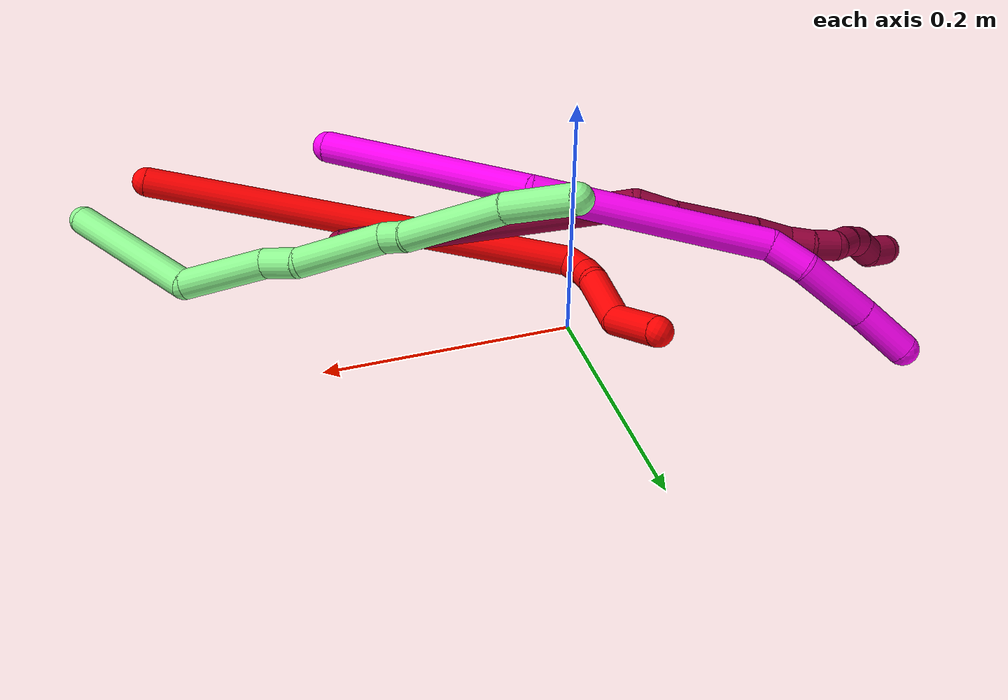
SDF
<sdf version="1.7">
 <world name="default">
  <model name="2">
   <static>0</static>
   <link name="2">
    <collision name="collision-cylinder-e_1_1_4">
     <pose>-0.0523 -0.021826 -0.172093 3.01544 -0.292823 -2.33225</pose>
     <geometry><cylinder><radius>0.0125</radius><length>0.362367</length></cylinder></geometry>
     <surface>
      <friction><ode><mu>1.16</mu><mu2>1.16</mu2><slip1>0</slip1><slip2>0</slip2></ode></friction>
      <contact><ode><kp>1e+06</kp><kd>1</kd><max_vel>0</max_vel><min_depth>0.001</min_depth></ode></contact>
     </surface>
    </collision>
    <visual name="visual-cylinder-e_1_1_4">
     <pose>-0.0523 -0.021826 -0.172093 3.01544 -0.292823 -2.33225</pose>
     <geometry><cylinder><radius>0.0125</radius><length>0.362367</length></cylinder></geometry>
     <material><ambient>1 0 0 1</ambient></material>
    </visual>
    <collision name="collision-cylinder-e_2_4_5">
     <pose>-0.104814 -0.038874 -0.353161 -2.65235 -0.021107 0.084507</pose>
     <geometry><cylinder><radius>0.0125</radius><length>0.02034</length></cylinder></geometry>
     <surface>
      <friction><ode><mu>1.16</mu><mu2>1.16</mu2><slip1>0</slip1><slip2>0</slip2></ode></friction>
      <contact><ode><kp>1e+06</kp><kd>1</kd><max_vel>0</max_vel><min_depth>0.001</min_depth></ode></contact>
     </surface>
    </collision>
    <visual name="visual-cylinder-e_2_4_5">
     <pose>-0.104814 -0.038874 -0.353161 -2.65235 -0.021107 0.084507</pose>
     <geometry><cylinder><radius>0.0125</radius><length>0.02034</length></cylinder></geometry>
     <material><ambient>1 0 0 1</ambient></material>
    </visual>
    <collision name="collision-cylinder-e_3_5_6">
     <pose>-0.105291 -0.025199 -0.366993 -2.07057 -0.025805 0.043486</pose>
     <geometry><cylinder><radius>0.0125</radius><length>0.02028</length></cylinder></geometry>
     <surface>
      <friction><ode><mu>1.16</mu><mu2>1.16</mu2><slip1>0</slip1><slip2>0</slip2></ode></friction>
      <contact><ode><kp>1e+06</kp><kd>1</kd><max_vel>0</max_vel><min_depth>0.001</min_depth></ode></contact>
     </surface>
    </collision>
    <visual name="visual-cylinder-e_3_5_6">
     <pose>-0.105291 -0.025199 -0.366993 -2.07057 -0.025805 0.043486</pose>
     <geometry><cylinder><radius>0.0125</radius><length>0.02028</length></cylinder></geometry>
     <material><ambient>1 0 0 1</ambient></material>
    </visual>
    <collision name="collision-cylinder-e_4_6_7">
     <pose>-0.099281 -0.000355 -0.387421 -2.34422 0.274287 -0.633202</pose>
     <geometry><cylinder><radius>0.0125</radius><length>0.046306</length></cylinder></geometry>
     <surface>
      <friction><ode><mu>1.16</mu><mu2>1.16</mu2><slip1>0</slip1><slip2>0</slip2></ode></friction>
      <contact><ode><kp>1e+06</kp><kd>1</kd><max_vel>0</max_vel><min_depth>0.001</min_depth></ode></contact>
     </surface>
    </collision>
    <visual name="visual-cylinder-e_4_6_7">
     <pose>-0.099281 -0.000355 -0.387421 -2.34422 0.274287 -0.633202</pose>
     <geometry><cylinder><radius>0.0125</radius><length>0.046306</length></cylinder></geometry>
     <material><ambient>1 0 0 1</ambient></material>
    </visual>
    <collision name="collision-cylinder-e_5_7_2">
     <pose>-0.100916 0.033316 -0.419304 -2.3148 -0.317125 0.699101</pose>
     <geometry><cylinder><radius>0.0125</radius><length>0.050707</length></cylinder></geometry>
     <surface>
      <friction><ode><mu>1.16</mu><mu2>1.16</mu2><slip1>0</slip1><slip2>0</slip2></ode></friction>
      <contact><ode><kp>1e+06</kp><kd>1</kd><max_vel>0</max_vel><min_depth>0.001</min_depth></ode></contact>
     </surface>
    </collision>
    <visual name="visual-cylinder-e_5_7_2">
     <pose>-0.100916 0.033316 -0.419304 -2.3148 -0.317125 0.699101</pose>
     <geometry><cylinder><radius>0.0125</radius><length>0.050707</length></cylinder></geometry>
     <material><ambient>1 0 0 1</ambient></material>
    </visual>
    <collision name="collision-sphere-2">
     <pose>-0.108822 0.05104 -0.435619 0 -0 0</pose>
     <geometry><sphere><radius>0.0125</radius></sphere></geometry>
     <surface>
      <friction><ode><mu>1.16</mu><mu2>1.16</mu2><slip1>0</slip1><slip2>0</slip2></ode></friction>
      <contact><ode><kp>1e+06</kp><kd>1</kd><max_vel>0</max_vel><min_depth>0.001</min_depth></ode></contact>
     </surface>
    </collision>
    <visual name="visual-sphere-2">
     <pose>-0.108822 0.05104 -0.435619 0 -0 0</pose>
     <geometry><sphere><radius>0.0125</radius></sphere></geometry>
     <material><ambient>1 0 0 1</ambient></material>
    </visual>
    <collision name="collision-sphere-7">
     <pose>-0.09301 0.015592 -0.40299 0 -0 0</pose>
     <geometry><sphere><radius>0.0125</radius></sphere></geometry>
     <surface>
      <friction><ode><mu>1.16</mu><mu2>1.16</mu2><slip1>0</slip1><slip2>0</slip2></ode></friction>
      <contact><ode><kp>1e+06</kp><kd>1</kd><max_vel>0</max_vel><min_depth>0.001</min_depth></ode></contact>
     </surface>
    </collision>
    <visual name="visual-sphere-7">
     <pose>-0.09301 0.015592 -0.40299 0 -0 0</pose>
     <geometry><sphere><radius>0.0125</radius></sphere></geometry>
     <material><ambient>1 0 0 1</ambient></material>
    </visual>
    <collision name="collision-sphere-6">
     <pose>-0.105552 -0.016302 -0.371851 0 -0 0</pose>
     <geometry><sphere><radius>0.0125</radius></sphere></geometry>
     <surface>
      <friction><ode><mu>1.16</mu><mu2>1.16</mu2><slip1>0</slip1><slip2>0</slip2></ode></friction>
      <contact><ode><kp>1e+06</kp><kd>1</kd><max_vel>0</max_vel><min_depth>0.001</min_depth></ode></contact>
     </surface>
    </collision>
    <visual name="visual-sphere-6">
     <pose>-0.105552 -0.016302 -0.371851 0 -0 0</pose>
     <geometry><sphere><radius>0.0125</radius></sphere></geometry>
     <material><ambient>1 0 0 1</ambient></material>
    </visual>
    <collision name="collision-sphere-5">
     <pose>-0.105029 -0.034095 -0.362136 0 -0 0</pose>
     <geometry><sphere><radius>0.0125</radius></sphere></geometry>
     <surface>
      <friction><ode><mu>1.16</mu><mu2>1.16</mu2><slip1>0</slip1><slip2>0</slip2></ode></friction>
      <contact><ode><kp>1e+06</kp><kd>1</kd><max_vel>0</max_vel><min_depth>0.001</min_depth></ode></contact>
     </surface>
    </collision>
    <visual name="visual-sphere-5">
     <pose>-0.105029 -0.034095 -0.362136 0 -0 0</pose>
     <geometry><sphere><radius>0.0125</radius></sphere></geometry>
     <material><ambient>1 0 0 1</ambient></material>
    </visual>
    <collision name="collision-sphere-1">
     <geometry><sphere><radius>0.0125</radius></sphere></geometry>
     <surface>
      <friction><ode><mu>1.16</mu><mu2>1.16</mu2><slip1>0</slip1><slip2>0</slip2></ode></friction>
      <contact><ode><kp>1e+06</kp><kd>1</kd><max_vel>0</max_vel><min_depth>0.001</min_depth></ode></contact>
     </surface>
    </collision>
    <visual name="visual-sphere-1">
     <geometry><sphere><radius>0.0125</radius></sphere></geometry>
     <material><ambient>1 0 0 1</ambient></material>
    </visual>
    <collision name="collision-sphere-4">
     <pose>-0.1046 -0.043653 -0.344185 0 -0 0</pose>
     <geometry><sphere><radius>0.0125</radius></sphere></geometry>
     <surface>
      <friction><ode><mu>1.16</mu><mu2>1.16</mu2><slip1>0</slip1><slip2>0</slip2></ode></friction>
      <contact><ode><kp>1e+06</kp><kd>1</kd><max_vel>0</max_vel><min_depth>0.001</min_depth></ode></contact>
     </surface>
    </collision>
    <visual name="visual-sphere-4">
     <pose>-0.1046 -0.043653 -0.344185 0 -0 0</pose>
     <geometry><sphere><radius>0.0125</radius></sphere></geometry>
     <material><ambient>1 0 0 1</ambient></material>
    </visual>
    <inertial>
     <pose>-0.065867 -0.015076 -0.232376 0 -0 0</pose>
     <mass>0.5</mass>
     <inertia>
      <ixx>-0.005373</ixx>
      <ixy>0</ixy>
      <ixz>0</ixz>
      <iyy>6.6e-05</iyy>
      <iyz>0</iyz>
      <izz>0.001577</izz>
     </inertia>
    </inertial>
   </link>
   <pose>0.30112 -0.220477 0.062808 0.88439 1.00737 0.285257</pose>
  </model>
  <model name="8">
   <static>0</static>
   <link name="8">
    <collision name="collision-cylinder-e_1_1_4">
     <pose>-0.117993 0.019594 0.026848 -0.630446 -1.29622 0.484171</pose>
     <geometry><cylinder><radius>0.0125</radius><length>0.245171</length></cylinder></geometry>
     <surface>
      <friction><ode><mu>1.16</mu><mu2>1.16</mu2><slip1>0</slip1><slip2>0</slip2></ode></friction>
      <contact><ode><kp>1e+06</kp><kd>1</kd><max_vel>0</max_vel><min_depth>0.001</min_depth></ode></contact>
     </surface>
    </collision>
    <visual name="visual-cylinder-e_1_1_4">
     <pose>-0.117993 0.019594 0.026848 -0.630446 -1.29622 0.484171</pose>
     <geometry><cylinder><radius>0.0125</radius><length>0.245171</length></cylinder></geometry>
     <material><ambient>0.584314 0 0.227451 1</ambient></material>
    </visual>
    <collision name="collision-cylinder-e_2_4_5">
     <pose>-0.250897 0.039443 0.049836 -3.07547 -1.31688 3.05614</pose>
     <geometry><cylinder><radius>0.0125</radius><length>0.030809</length></cylinder></geometry>
     <surface>
      <friction><ode><mu>1.16</mu><mu2>1.16</mu2><slip1>0</slip1><slip2>0</slip2></ode></friction>
      <contact><ode><kp>1e+06</kp><kd>1</kd><max_vel>0</max_vel><min_depth>0.001</min_depth></ode></contact>
     </surface>
    </collision>
    <visual name="visual-cylinder-e_2_4_5">
     <pose>-0.250897 0.039443 0.049836 -3.07547 -1.31688 3.05614</pose>
     <geometry><cylinder><radius>0.0125</radius><length>0.030809</length></cylinder></geometry>
     <material><ambient>0.584314 0 0.227451 1</ambient></material>
    </visual>
    <collision name="collision-cylinder-e_3_5_6">
     <pose>-0.299346 0.031449 0.039518 2.23479 -1.26804 -1.97113</pose>
     <geometry><cylinder><radius>0.0125</radius><length>0.070272</length></cylinder></geometry>
     <surface>
      <friction><ode><mu>1.16</mu><mu2>1.16</mu2><slip1>0</slip1><slip2>0</slip2></ode></friction>
      <contact><ode><kp>1e+06</kp><kd>1</kd><max_vel>0</max_vel><min_depth>0.001</min_depth></ode></contact>
     </surface>
    </collision>
    <visual name="visual-cylinder-e_3_5_6">
     <pose>-0.299346 0.031449 0.039518 2.23479 -1.26804 -1.97113</pose>
     <geometry><cylinder><radius>0.0125</radius><length>0.070272</length></cylinder></geometry>
     <material><ambient>0.584314 0 0.227451 1</ambient></material>
    </visual>
    <collision name="collision-cylinder-e_4_6_7">
     <pose>-0.348046 0.019005 0.02899 2.34145 -1.20284 -2.03705</pose>
     <geometry><cylinder><radius>0.0125</radius><length>0.0325</length></cylinder></geometry>
     <surface>
      <friction><ode><mu>1.16</mu><mu2>1.16</mu2><slip1>0</slip1><slip2>0</slip2></ode></friction>
      <contact><ode><kp>1e+06</kp><kd>1</kd><max_vel>0</max_vel><min_depth>0.001</min_depth></ode></contact>
     </surface>
    </collision>
    <visual name="visual-cylinder-e_4_6_7">
     <pose>-0.348046 0.019005 0.02899 2.34145 -1.20284 -2.03705</pose>
     <geometry><cylinder><radius>0.0125</radius><length>0.0325</length></cylinder></geometry>
     <material><ambient>0.584314 0 0.227451 1</ambient></material>
    </visual>
    <collision name="collision-cylinder-e_5_7_8">
     <pose>-0.373406 0.015233 0.024095 -2.6678 -1.48028 2.62474</pose>
     <geometry><cylinder><radius>0.0125</radius><length>0.020478</length></cylinder></geometry>
     <surface>
      <friction><ode><mu>1.16</mu><mu2>1.16</mu2><slip1>0</slip1><slip2>0</slip2></ode></friction>
      <contact><ode><kp>1e+06</kp><kd>1</kd><max_vel>0</max_vel><min_depth>0.001</min_depth></ode></contact>
     </surface>
    </collision>
    <visual name="visual-cylinder-e_5_7_8">
     <pose>-0.373406 0.015233 0.024095 -2.6678 -1.48028 2.62474</pose>
     <geometry><cylinder><radius>0.0125</radius><length>0.020478</length></cylinder></geometry>
     <material><ambient>0.584314 0 0.227451 1</ambient></material>
    </visual>
    <collision name="collision-cylinder-e_6_8_9">
     <pose>-0.393533 0.013437 0.023082 1.65616 -1.35021 -1.43429</pose>
     <geometry><cylinder><radius>0.0125</radius><length>0.020354</length></cylinder></geometry>
     <surface>
      <friction><ode><mu>1.16</mu><mu2>1.16</mu2><slip1>0</slip1><slip2>0</slip2></ode></friction>
      <contact><ode><kp>1e+06</kp><kd>1</kd><max_vel>0</max_vel><min_depth>0.001</min_depth></ode></contact>
     </surface>
    </collision>
    <visual name="visual-cylinder-e_6_8_9">
     <pose>-0.393533 0.013437 0.023082 1.65616 -1.35021 -1.43429</pose>
     <geometry><cylinder><radius>0.0125</radius><length>0.020354</length></cylinder></geometry>
     <material><ambient>0.584314 0 0.227451 1</ambient></material>
    </visual>
    <collision name="collision-cylinder-e_7_9_10">
     <pose>-0.40972 0.00327 0.023406 1.5062 -0.665816 -0.626895</pose>
     <geometry><cylinder><radius>0.0125</radius><length>0.020256</length></cylinder></geometry>
     <surface>
      <friction><ode><mu>1.16</mu><mu2>1.16</mu2><slip1>0</slip1><slip2>0</slip2></ode></friction>
      <contact><ode><kp>1e+06</kp><kd>1</kd><max_vel>0</max_vel><min_depth>0.001</min_depth></ode></contact>
     </surface>
    </collision>
    <visual name="visual-cylinder-e_7_9_10">
     <pose>-0.40972 0.00327 0.023406 1.5062 -0.665816 -0.626895</pose>
     <geometry><cylinder><radius>0.0125</radius><length>0.020256</length></cylinder></geometry>
     <material><ambient>0.584314 0 0.227451 1</ambient></material>
    </visual>
    <collision name="collision-cylinder-e_8_10_11">
     <pose>-0.42244 -0.012205 0.022449 1.76382 -0.700386 -0.834954</pose>
     <geometry><cylinder><radius>0.0125</radius><length>0.02006</length></cylinder></geometry>
     <surface>
      <friction><ode><mu>1.16</mu><mu2>1.16</mu2><slip1>0</slip1><slip2>0</slip2></ode></friction>
      <contact><ode><kp>1e+06</kp><kd>1</kd><max_vel>0</max_vel><min_depth>0.001</min_depth></ode></contact>
     </surface>
    </collision>
    <visual name="visual-cylinder-e_8_10_11">
     <pose>-0.42244 -0.012205 0.022449 1.76382 -0.700386 -0.834954</pose>
     <geometry><cylinder><radius>0.0125</radius><length>0.02006</length></cylinder></geometry>
     <material><ambient>0.584314 0 0.227451 1</ambient></material>
    </visual>
    <collision name="collision-cylinder-e_9_11_12">
     <pose>-0.435432 -0.025262 0.015744 2.32861 -0.708639 -1.41982</pose>
     <geometry><cylinder><radius>0.0125</radius><length>0.02006</length></cylinder></geometry>
     <surface>
      <friction><ode><mu>1.16</mu><mu2>1.16</mu2><slip1>0</slip1><slip2>0</slip2></ode></friction>
      <contact><ode><kp>1e+06</kp><kd>1</kd><max_vel>0</max_vel><min_depth>0.001</min_depth></ode></contact>
     </surface>
    </collision>
    <visual name="visual-cylinder-e_9_11_12">
     <pose>-0.435432 -0.025262 0.015744 2.32861 -0.708639 -1.41982</pose>
     <geometry><cylinder><radius>0.0125</radius><length>0.02006</length></cylinder></geometry>
     <material><ambient>0.584314 0 0.227451 1</ambient></material>
    </visual>
    <collision name="collision-cylinder-e_10_12_2">
     <pose>-0.450242 -0.036427 0.010787 1.52149 -0.972946 -0.932748</pose>
     <geometry><cylinder><radius>0.0125</radius><length>0.02004</length></cylinder></geometry>
     <surface>
      <friction><ode><mu>1.16</mu><mu2>1.16</mu2><slip1>0</slip1><slip2>0</slip2></ode></friction>
      <contact><ode><kp>1e+06</kp><kd>1</kd><max_vel>0</max_vel><min_depth>0.001</min_depth></ode></contact>
     </surface>
    </collision>
    <visual name="visual-cylinder-e_10_12_2">
     <pose>-0.450242 -0.036427 0.010787 1.52149 -0.972946 -0.932748</pose>
     <geometry><cylinder><radius>0.0125</radius><length>0.02004</length></cylinder></geometry>
     <material><ambient>0.584314 0 0.227451 1</ambient></material>
    </visual>
    <collision name="collision-sphere-2">
     <pose>-0.458524 -0.04206 0.011065 0 -0 0</pose>
     <geometry><sphere><radius>0.0125</radius></sphere></geometry>
     <surface>
      <friction><ode><mu>1.16</mu><mu2>1.16</mu2><slip1>0</slip1><slip2>0</slip2></ode></friction>
      <contact><ode><kp>1e+06</kp><kd>1</kd><max_vel>0</max_vel><min_depth>0.001</min_depth></ode></contact>
     </surface>
    </collision>
    <visual name="visual-sphere-2">
     <pose>-0.458524 -0.04206 0.011065 0 -0 0</pose>
     <geometry><sphere><radius>0.0125</radius></sphere></geometry>
     <material><ambient>0.584314 0 0.227451 1</ambient></material>
    </visual>
    <collision name="collision-sphere-12">
     <pose>-0.44196 -0.030794 0.010509 0 -0 0</pose>
     <geometry><sphere><radius>0.0125</radius></sphere></geometry>
     <surface>
      <friction><ode><mu>1.16</mu><mu2>1.16</mu2><slip1>0</slip1><slip2>0</slip2></ode></friction>
      <contact><ode><kp>1e+06</kp><kd>1</kd><max_vel>0</max_vel><min_depth>0.001</min_depth></ode></contact>
     </surface>
    </collision>
    <visual name="visual-sphere-12">
     <pose>-0.44196 -0.030794 0.010509 0 -0 0</pose>
     <geometry><sphere><radius>0.0125</radius></sphere></geometry>
     <material><ambient>0.584314 0 0.227451 1</ambient></material>
    </visual>
    <collision name="collision-sphere-11">
     <pose>-0.428905 -0.019731 0.020978 0 -0 0</pose>
     <geometry><sphere><radius>0.0125</radius></sphere></geometry>
     <surface>
      <friction><ode><mu>1.16</mu><mu2>1.16</mu2><slip1>0</slip1><slip2>0</slip2></ode></friction>
      <contact><ode><kp>1e+06</kp><kd>1</kd><max_vel>0</max_vel><min_depth>0.001</min_depth></ode></contact>
     </surface>
    </collision>
    <visual name="visual-sphere-11">
     <pose>-0.428905 -0.019731 0.020978 0 -0 0</pose>
     <geometry><sphere><radius>0.0125</radius></sphere></geometry>
     <material><ambient>0.584314 0 0.227451 1</ambient></material>
    </visual>
    <collision name="collision-sphere-10">
     <pose>-0.415976 -0.004678 0.02392 0 -0 0</pose>
     <geometry><sphere><radius>0.0125</radius></sphere></geometry>
     <surface>
      <friction><ode><mu>1.16</mu><mu2>1.16</mu2><slip1>0</slip1><slip2>0</slip2></ode></friction>
      <contact><ode><kp>1e+06</kp><kd>1</kd><max_vel>0</max_vel><min_depth>0.001</min_depth></ode></contact>
     </surface>
    </collision>
    <visual name="visual-sphere-10">
     <pose>-0.415976 -0.004678 0.02392 0 -0 0</pose>
     <geometry><sphere><radius>0.0125</radius></sphere></geometry>
     <material><ambient>0.584314 0 0.227451 1</ambient></material>
    </visual>
    <collision name="collision-sphere-9">
     <pose>-0.403464 0.011218 0.022892 0 -0 0</pose>
     <geometry><sphere><radius>0.0125</radius></sphere></geometry>
     <surface>
      <friction><ode><mu>1.16</mu><mu2>1.16</mu2><slip1>0</slip1><slip2>0</slip2></ode></friction>
      <contact><ode><kp>1e+06</kp><kd>1</kd><max_vel>0</max_vel><min_depth>0.001</min_depth></ode></contact>
     </surface>
    </collision>
    <visual name="visual-sphere-9">
     <pose>-0.403464 0.011218 0.022892 0 -0 0</pose>
     <geometry><sphere><radius>0.0125</radius></sphere></geometry>
     <material><ambient>0.584314 0 0.227451 1</ambient></material>
    </visual>
    <collision name="collision-sphere-4">
     <pose>-0.235987 0.039188 0.053697 0 -0 0</pose>
     <geometry><sphere><radius>0.0125</radius></sphere></geometry>
     <surface>
      <friction><ode><mu>1.16</mu><mu2>1.16</mu2><slip1>0</slip1><slip2>0</slip2></ode></friction>
      <contact><ode><kp>1e+06</kp><kd>1</kd><max_vel>0</max_vel><min_depth>0.001</min_depth></ode></contact>
     </surface>
    </collision>
    <visual name="visual-sphere-4">
     <pose>-0.235987 0.039188 0.053697 0 -0 0</pose>
     <geometry><sphere><radius>0.0125</radius></sphere></geometry>
     <material><ambient>0.584314 0 0.227451 1</ambient></material>
    </visual>
    <collision name="collision-sphere-1">
     <geometry><sphere><radius>0.0125</radius></sphere></geometry>
     <surface>
      <friction><ode><mu>1.16</mu><mu2>1.16</mu2><slip1>0</slip1><slip2>0</slip2></ode></friction>
      <contact><ode><kp>1e+06</kp><kd>1</kd><max_vel>0</max_vel><min_depth>0.001</min_depth></ode></contact>
     </surface>
    </collision>
    <visual name="visual-sphere-1">
     <geometry><sphere><radius>0.0125</radius></sphere></geometry>
     <material><ambient>0.584314 0 0.227451 1</ambient></material>
    </visual>
    <collision name="collision-sphere-8">
     <pose>-0.383603 0.015656 0.023271 0 -0 0</pose>
     <geometry><sphere><radius>0.0125</radius></sphere></geometry>
     <surface>
      <friction><ode><mu>1.16</mu><mu2>1.16</mu2><slip1>0</slip1><slip2>0</slip2></ode></friction>
      <contact><ode><kp>1e+06</kp><kd>1</kd><max_vel>0</max_vel><min_depth>0.001</min_depth></ode></contact>
     </surface>
    </collision>
    <visual name="visual-sphere-8">
     <pose>-0.383603 0.015656 0.023271 0 -0 0</pose>
     <geometry><sphere><radius>0.0125</radius></sphere></geometry>
     <material><ambient>0.584314 0 0.227451 1</ambient></material>
    </visual>
    <collision name="collision-sphere-5">
     <pose>-0.265808 0.039699 0.045975 0 -0 0</pose>
     <geometry><sphere><radius>0.0125</radius></sphere></geometry>
     <surface>
      <friction><ode><mu>1.16</mu><mu2>1.16</mu2><slip1>0</slip1><slip2>0</slip2></ode></friction>
      <contact><ode><kp>1e+06</kp><kd>1</kd><max_vel>0</max_vel><min_depth>0.001</min_depth></ode></contact>
     </surface>
    </collision>
    <visual name="visual-sphere-5">
     <pose>-0.265808 0.039699 0.045975 0 -0 0</pose>
     <geometry><sphere><radius>0.0125</radius></sphere></geometry>
     <material><ambient>0.584314 0 0.227451 1</ambient></material>
    </visual>
    <collision name="collision-sphere-6">
     <pose>-0.332884 0.023198 0.033062 0 -0 0</pose>
     <geometry><sphere><radius>0.0125</radius></sphere></geometry>
     <surface>
      <friction><ode><mu>1.16</mu><mu2>1.16</mu2><slip1>0</slip1><slip2>0</slip2></ode></friction>
      <contact><ode><kp>1e+06</kp><kd>1</kd><max_vel>0</max_vel><min_depth>0.001</min_depth></ode></contact>
     </surface>
    </collision>
    <visual name="visual-sphere-6">
     <pose>-0.332884 0.023198 0.033062 0 -0 0</pose>
     <geometry><sphere><radius>0.0125</radius></sphere></geometry>
     <material><ambient>0.584314 0 0.227451 1</ambient></material>
    </visual>
    <collision name="collision-sphere-7">
     <pose>-0.363208 0.014811 0.024919 0 -0 0</pose>
     <geometry><sphere><radius>0.0125</radius></sphere></geometry>
     <surface>
      <friction><ode><mu>1.16</mu><mu2>1.16</mu2><slip1>0</slip1><slip2>0</slip2></ode></friction>
      <contact><ode><kp>1e+06</kp><kd>1</kd><max_vel>0</max_vel><min_depth>0.001</min_depth></ode></contact>
     </surface>
    </collision>
    <visual name="visual-sphere-7">
     <pose>-0.363208 0.014811 0.024919 0 -0 0</pose>
     <geometry><sphere><radius>0.0125</radius></sphere></geometry>
     <material><ambient>0.584314 0 0.227451 1</ambient></material>
    </visual>
    <inertial>
     <pose>-0.238386 0.016034 0.028513 0 -0 0</pose>
     <mass>0.5</mass>
     <inertia>
      <ixx>0.000401</ixx>
      <ixy>0</ixy>
      <ixz>0</ixz>
      <iyy>0.001394</iyy>
      <iyz>0</iyz>
      <izz>0.001051</izz>
     </inertia>
    </inertial>
   </link>
   <pose>0.15649 -0.119252 0.034782 0.374223 -0.039707 -0.331296</pose>
  </model>
  <model name="10">
   <static>0</static>
   <link name="10">
    <collision name="collision-cylinder-e_1_1_4">
     <pose>-0.07641 0.01336 -0.047086 -2.86511 -1.00109 2.64347</pose>
     <geometry><cylinder><radius>0.0125</radius><length>0.181483</length></cylinder></geometry>
     <surface>
      <friction><ode><mu>1.16</mu><mu2>1.16</mu2><slip1>0</slip1><slip2>0</slip2></ode></friction>
      <contact><ode><kp>1e+06</kp><kd>1</kd><max_vel>0</max_vel><min_depth>0.001</min_depth></ode></contact>
     </surface>
    </collision>
    <visual name="visual-cylinder-e_1_1_4">
     <pose>-0.07641 0.01336 -0.047086 -2.86511 -1.00109 2.64347</pose>
     <geometry><cylinder><radius>0.0125</radius><length>0.181483</length></cylinder></geometry>
     <material><ambient>1 0 0.964706 1</ambient></material>
    </visual>
    <collision name="collision-cylinder-e_2_4_5">
     <pose>-0.204291 0.056285 -0.165235 -2.74734 -0.589441 1.97774</pose>
     <geometry><cylinder><radius>0.0125</radius><length>0.185184</length></cylinder></geometry>
     <surface>
      <friction><ode><mu>1.16</mu><mu2>1.16</mu2><slip1>0</slip1><slip2>0</slip2></ode></friction>
      <contact><ode><kp>1e+06</kp><kd>1</kd><max_vel>0</max_vel><min_depth>0.001</min_depth></ode></contact>
     </surface>
    </collision>
    <visual name="visual-cylinder-e_2_4_5">
     <pose>-0.204291 0.056285 -0.165235 -2.74734 -0.589441 1.97774</pose>
     <geometry><cylinder><radius>0.0125</radius><length>0.185184</length></cylinder></geometry>
     <material><ambient>1 0 0.964706 1</ambient></material>
    </visual>
    <collision name="collision-cylinder-e_3_5_6">
     <pose>-0.265674 0.094927 -0.244506 -2.30603 -0.680728 1.34677</pose>
     <geometry><cylinder><radius>0.0125</radius><length>0.031497</length></cylinder></geometry>
     <surface>
      <friction><ode><mu>1.16</mu><mu2>1.16</mu2><slip1>0</slip1><slip2>0</slip2></ode></friction>
      <contact><ode><kp>1e+06</kp><kd>1</kd><max_vel>0</max_vel><min_depth>0.001</min_depth></ode></contact>
     </surface>
    </collision>
    <visual name="visual-cylinder-e_3_5_6">
     <pose>-0.265674 0.094927 -0.244506 -2.30603 -0.680728 1.34677</pose>
     <geometry><cylinder><radius>0.0125</radius><length>0.031497</length></cylinder></geometry>
     <material><ambient>1 0 0.964706 1</ambient></material>
    </visual>
    <collision name="collision-cylinder-e_4_6_7">
     <pose>-0.287315 0.124793 -0.269419 -2.24768 -0.414379 0.826599</pose>
     <geometry><cylinder><radius>0.0125</radius><length>0.058268</length></cylinder></geometry>
     <surface>
      <friction><ode><mu>1.16</mu><mu2>1.16</mu2><slip1>0</slip1><slip2>0</slip2></ode></friction>
      <contact><ode><kp>1e+06</kp><kd>1</kd><max_vel>0</max_vel><min_depth>0.001</min_depth></ode></contact>
     </surface>
    </collision>
    <visual name="visual-cylinder-e_4_6_7">
     <pose>-0.287315 0.124793 -0.269419 -2.24768 -0.414379 0.826599</pose>
     <geometry><cylinder><radius>0.0125</radius><length>0.058268</length></cylinder></geometry>
     <material><ambient>1 0 0.964706 1</ambient></material>
    </visual>
    <collision name="collision-cylinder-e_5_7_2">
     <pose>-0.308677 0.161525 -0.297418 -2.18716 -0.457979 0.846973</pose>
     <geometry><cylinder><radius>0.0125</radius><length>0.043568</length></cylinder></geometry>
     <surface>
      <friction><ode><mu>1.16</mu><mu2>1.16</mu2><slip1>0</slip1><slip2>0</slip2></ode></friction>
      <contact><ode><kp>1e+06</kp><kd>1</kd><max_vel>0</max_vel><min_depth>0.001</min_depth></ode></contact>
     </surface>
    </collision>
    <visual name="visual-cylinder-e_5_7_2">
     <pose>-0.308677 0.161525 -0.297418 -2.18716 -0.457979 0.846973</pose>
     <geometry><cylinder><radius>0.0125</radius><length>0.043568</length></cylinder></geometry>
     <material><ambient>1 0 0.964706 1</ambient></material>
    </visual>
    <collision name="collision-sphere-2">
     <pose>-0.318308 0.177469 -0.308713 0 -0 0</pose>
     <geometry><sphere><radius>0.0125</radius></sphere></geometry>
     <surface>
      <friction><ode><mu>1.16</mu><mu2>1.16</mu2><slip1>0</slip1><slip2>0</slip2></ode></friction>
      <contact><ode><kp>1e+06</kp><kd>1</kd><max_vel>0</max_vel><min_depth>0.001</min_depth></ode></contact>
     </surface>
    </collision>
    <visual name="visual-sphere-2">
     <pose>-0.318308 0.177469 -0.308713 0 -0 0</pose>
     <geometry><sphere><radius>0.0125</radius></sphere></geometry>
     <material><ambient>1 0 0.964706 1</ambient></material>
    </visual>
    <collision name="collision-sphere-7">
     <pose>-0.299045 0.145582 -0.286124 0 -0 0</pose>
     <geometry><sphere><radius>0.0125</radius></sphere></geometry>
     <surface>
      <friction><ode><mu>1.16</mu><mu2>1.16</mu2><slip1>0</slip1><slip2>0</slip2></ode></friction>
      <contact><ode><kp>1e+06</kp><kd>1</kd><max_vel>0</max_vel><min_depth>0.001</min_depth></ode></contact>
     </surface>
    </collision>
    <visual name="visual-sphere-7">
     <pose>-0.299045 0.145582 -0.286124 0 -0 0</pose>
     <geometry><sphere><radius>0.0125</radius></sphere></geometry>
     <material><ambient>1 0 0.964706 1</ambient></material>
    </visual>
    <collision name="collision-sphere-6">
     <pose>-0.275585 0.104004 -0.252715 0 -0 0</pose>
     <geometry><sphere><radius>0.0125</radius></sphere></geometry>
     <surface>
      <friction><ode><mu>1.16</mu><mu2>1.16</mu2><slip1>0</slip1><slip2>0</slip2></ode></friction>
      <contact><ode><kp>1e+06</kp><kd>1</kd><max_vel>0</max_vel><min_depth>0.001</min_depth></ode></contact>
     </surface>
    </collision>
    <visual name="visual-sphere-6">
     <pose>-0.275585 0.104004 -0.252715 0 -0 0</pose>
     <geometry><sphere><radius>0.0125</radius></sphere></geometry>
     <material><ambient>1 0 0.964706 1</ambient></material>
    </visual>
    <collision name="collision-sphere-5">
     <pose>-0.255762 0.08585 -0.236297 0 -0 0</pose>
     <geometry><sphere><radius>0.0125</radius></sphere></geometry>
     <surface>
      <friction><ode><mu>1.16</mu><mu2>1.16</mu2><slip1>0</slip1><slip2>0</slip2></ode></friction>
      <contact><ode><kp>1e+06</kp><kd>1</kd><max_vel>0</max_vel><min_depth>0.001</min_depth></ode></contact>
     </surface>
    </collision>
    <visual name="visual-sphere-5">
     <pose>-0.255762 0.08585 -0.236297 0 -0 0</pose>
     <geometry><sphere><radius>0.0125</radius></sphere></geometry>
     <material><ambient>1 0 0.964706 1</ambient></material>
    </visual>
    <collision name="collision-sphere-1">
     <geometry><sphere><radius>0.0125</radius></sphere></geometry>
     <surface>
      <friction><ode><mu>1.16</mu><mu2>1.16</mu2><slip1>0</slip1><slip2>0</slip2></ode></friction>
      <contact><ode><kp>1e+06</kp><kd>1</kd><max_vel>0</max_vel><min_depth>0.001</min_depth></ode></contact>
     </surface>
    </collision>
    <visual name="visual-sphere-1">
     <geometry><sphere><radius>0.0125</radius></sphere></geometry>
     <material><ambient>1 0 0.964706 1</ambient></material>
    </visual>
    <collision name="collision-sphere-4">
     <pose>-0.152819 0.026721 -0.094172 0 -0 0</pose>
     <geometry><sphere><radius>0.0125</radius></sphere></geometry>
     <surface>
      <friction><ode><mu>1.16</mu><mu2>1.16</mu2><slip1>0</slip1><slip2>0</slip2></ode></friction>
      <contact><ode><kp>1e+06</kp><kd>1</kd><max_vel>0</max_vel><min_depth>0.001</min_depth></ode></contact>
     </surface>
    </collision>
    <visual name="visual-sphere-4">
     <pose>-0.152819 0.026721 -0.094172 0 -0 0</pose>
     <geometry><sphere><radius>0.0125</radius></sphere></geometry>
     <material><ambient>1 0 0.964706 1</ambient></material>
    </visual>
    <inertial>
     <pose>-0.180512 0.060293 -0.151004 0 -0 0</pose>
     <mass>0.5</mass>
     <inertia>
      <ixx>0.000138</ixx>
      <ixy>0</ixy>
      <ixz>0</ixz>
      <iyy>0.001355</iyy>
      <iyz>0</iyz>
      <izz>0.000446</izz>
     </inertia>
    </inertial>
   </link>
   <pose>0.158783 -0.139043 0.11718 -1.57643 0.230952 -1.32643</pose>
  </model>
  <model name="13">
   <static>0</static>
   <link name="13">
    <collision name="collision-cylinder-e_1_1_4">
     <pose>-0.040195 0.055784 -0.019636 -1.90925 -0.596953 0.819729</pose>
     <geometry><cylinder><radius>0.0125</radius><length>0.143012</length></cylinder></geometry>
     <surface>
      <friction><ode><mu>1.16</mu><mu2>1.16</mu2><slip1>0</slip1><slip2>0</slip2></ode></friction>
      <contact><ode><kp>1e+06</kp><kd>1</kd><max_vel>0</max_vel><min_depth>0.001</min_depth></ode></contact>
     </surface>
    </collision>
    <visual name="visual-cylinder-e_1_1_4">
     <pose>-0.040195 0.055784 -0.019636 -1.90925 -0.596953 0.819729</pose>
     <geometry><cylinder><radius>0.0125</radius><length>0.143012</length></cylinder></geometry>
     <material><ambient>0.564706 0.984314 0.572549 1</ambient></material>
    </visual>
    <collision name="collision-cylinder-e_2_4_5">
     <pose>-0.116714 0.11958 -0.042009 -1.89995 -1.34179 1.67484</pose>
     <geometry><cylinder><radius>0.0125</radius><length>0.074595</length></cylinder></geometry>
     <surface>
      <friction><ode><mu>1.16</mu><mu2>1.16</mu2><slip1>0</slip1><slip2>0</slip2></ode></friction>
      <contact><ode><kp>1e+06</kp><kd>1</kd><max_vel>0</max_vel><min_depth>0.001</min_depth></ode></contact>
     </surface>
    </collision>
    <visual name="visual-cylinder-e_2_4_5">
     <pose>-0.116714 0.11958 -0.042009 -1.89995 -1.34179 1.67484</pose>
     <geometry><cylinder><radius>0.0125</radius><length>0.074595</length></cylinder></geometry>
     <material><ambient>0.564706 0.984314 0.572549 1</ambient></material>
    </visual>
    <collision name="collision-cylinder-e_3_5_6">
     <pose>-0.166489 0.136246 -0.046029 -1.7181 -0.99416 1.12287</pose>
     <geometry><cylinder><radius>0.0125</radius><length>0.032092</length></cylinder></geometry>
     <surface>
      <friction><ode><mu>1.16</mu><mu2>1.16</mu2><slip1>0</slip1><slip2>0</slip2></ode></friction>
      <contact><ode><kp>1e+06</kp><kd>1</kd><max_vel>0</max_vel><min_depth>0.001</min_depth></ode></contact>
     </surface>
    </collision>
    <visual name="visual-cylinder-e_3_5_6">
     <pose>-0.166489 0.136246 -0.046029 -1.7181 -0.99416 1.12287</pose>
     <geometry><cylinder><radius>0.0125</radius><length>0.032092</length></cylinder></geometry>
     <material><ambient>0.564706 0.984314 0.572549 1</ambient></material>
    </visual>
    <collision name="collision-cylinder-e_4_6_7">
     <pose>-0.216876 0.151358 -0.049985 -1.96305 -1.38378 1.78378</pose>
     <geometry><cylinder><radius>0.0125</radius><length>0.075182</length></cylinder></geometry>
     <surface>
      <friction><ode><mu>1.16</mu><mu2>1.16</mu2><slip1>0</slip1><slip2>0</slip2></ode></friction>
      <contact><ode><kp>1e+06</kp><kd>1</kd><max_vel>0</max_vel><min_depth>0.001</min_depth></ode></contact>
     </surface>
    </collision>
    <visual name="visual-cylinder-e_4_6_7">
     <pose>-0.216876 0.151358 -0.049985 -1.96305 -1.38378 1.78378</pose>
     <geometry><cylinder><radius>0.0125</radius><length>0.075182</length></cylinder></geometry>
     <material><ambient>0.564706 0.984314 0.572549 1</ambient></material>
    </visual>
    <collision name="collision-cylinder-e_5_7_8">
     <pose>-0.262709 0.164727 -0.052215 -1.50693 -0.909483 0.860041</pose>
     <geometry><cylinder><radius>0.0125</radius><length>0.02255</length></cylinder></geometry>
     <surface>
      <friction><ode><mu>1.16</mu><mu2>1.16</mu2><slip1>0</slip1><slip2>0</slip2></ode></friction>
      <contact><ode><kp>1e+06</kp><kd>1</kd><max_vel>0</max_vel><min_depth>0.001</min_depth></ode></contact>
     </surface>
    </collision>
    <visual name="visual-cylinder-e_5_7_8">
     <pose>-0.262709 0.164727 -0.052215 -1.50693 -0.909483 0.860041</pose>
     <geometry><cylinder><radius>0.0125</radius><length>0.02255</length></cylinder></geometry>
     <material><ambient>0.564706 0.984314 0.572549 1</ambient></material>
    </visual>
    <collision name="collision-cylinder-e_6_8_9">
     <pose>-0.312955 0.190361 -0.047705 -1.35685 -1.13685 0.950941</pose>
     <geometry><cylinder><radius>0.0125</radius><length>0.091143</length></cylinder></geometry>
     <surface>
      <friction><ode><mu>1.16</mu><mu2>1.16</mu2><slip1>0</slip1><slip2>0</slip2></ode></friction>
      <contact><ode><kp>1e+06</kp><kd>1</kd><max_vel>0</max_vel><min_depth>0.001</min_depth></ode></contact>
     </surface>
    </collision>
    <visual name="visual-cylinder-e_6_8_9">
     <pose>-0.312955 0.190361 -0.047705 -1.35685 -1.13685 0.950941</pose>
     <geometry><cylinder><radius>0.0125</radius><length>0.091143</length></cylinder></geometry>
     <material><ambient>0.564706 0.984314 0.572549 1</ambient></material>
    </visual>
    <collision name="collision-cylinder-e_7_9_2">
     <pose>-0.380702 0.22478 -0.04337 -1.55381 -1.03436 1.01983</pose>
     <geometry><cylinder><radius>0.0125</radius><length>0.061427</length></cylinder></geometry>
     <surface>
      <friction><ode><mu>1.16</mu><mu2>1.16</mu2><slip1>0</slip1><slip2>0</slip2></ode></friction>
      <contact><ode><kp>1e+06</kp><kd>1</kd><max_vel>0</max_vel><min_depth>0.001</min_depth></ode></contact>
     </surface>
    </collision>
    <visual name="visual-cylinder-e_7_9_2">
     <pose>-0.380702 0.22478 -0.04337 -1.55381 -1.03436 1.01983</pose>
     <geometry><cylinder><radius>0.0125</radius><length>0.061427</length></cylinder></geometry>
     <material><ambient>0.564706 0.984314 0.572549 1</ambient></material>
    </visual>
    <collision name="collision-sphere-2">
     <pose>-0.407101 0.240474 -0.043103 0 -0 0</pose>
     <geometry><sphere><radius>0.0125</radius></sphere></geometry>
     <surface>
      <friction><ode><mu>1.16</mu><mu2>1.16</mu2><slip1>0</slip1><slip2>0</slip2></ode></friction>
      <contact><ode><kp>1e+06</kp><kd>1</kd><max_vel>0</max_vel><min_depth>0.001</min_depth></ode></contact>
     </surface>
    </collision>
    <visual name="visual-sphere-2">
     <pose>-0.407101 0.240474 -0.043103 0 -0 0</pose>
     <geometry><sphere><radius>0.0125</radius></sphere></geometry>
     <material><ambient>0.564706 0.984314 0.572549 1</ambient></material>
    </visual>
    <collision name="collision-sphere-9">
     <pose>-0.354303 0.209085 -0.043636 0 -0 0</pose>
     <geometry><sphere><radius>0.0125</radius></sphere></geometry>
     <surface>
      <friction><ode><mu>1.16</mu><mu2>1.16</mu2><slip1>0</slip1><slip2>0</slip2></ode></friction>
      <contact><ode><kp>1e+06</kp><kd>1</kd><max_vel>0</max_vel><min_depth>0.001</min_depth></ode></contact>
     </surface>
    </collision>
    <visual name="visual-sphere-9">
     <pose>-0.354303 0.209085 -0.043636 0 -0 0</pose>
     <geometry><sphere><radius>0.0125</radius></sphere></geometry>
     <material><ambient>0.564706 0.984314 0.572549 1</ambient></material>
    </visual>
    <collision name="collision-sphere-4">
     <pose>-0.08039 0.111568 -0.039272 0 -0 0</pose>
     <geometry><sphere><radius>0.0125</radius></sphere></geometry>
     <surface>
      <friction><ode><mu>1.16</mu><mu2>1.16</mu2><slip1>0</slip1><slip2>0</slip2></ode></friction>
      <contact><ode><kp>1e+06</kp><kd>1</kd><max_vel>0</max_vel><min_depth>0.001</min_depth></ode></contact>
     </surface>
    </collision>
    <visual name="visual-sphere-4">
     <pose>-0.08039 0.111568 -0.039272 0 -0 0</pose>
     <geometry><sphere><radius>0.0125</radius></sphere></geometry>
     <material><ambient>0.564706 0.984314 0.572549 1</ambient></material>
    </visual>
    <collision name="collision-sphere-1">
     <geometry><sphere><radius>0.0125</radius></sphere></geometry>
     <surface>
      <friction><ode><mu>1.16</mu><mu2>1.16</mu2><slip1>0</slip1><slip2>0</slip2></ode></friction>
      <contact><ode><kp>1e+06</kp><kd>1</kd><max_vel>0</max_vel><min_depth>0.001</min_depth></ode></contact>
     </surface>
    </collision>
    <visual name="visual-sphere-1">
     <geometry><sphere><radius>0.0125</radius></sphere></geometry>
     <material><ambient>0.564706 0.984314 0.572549 1</ambient></material>
    </visual>
    <collision name="collision-sphere-8">
     <pose>-0.271608 0.171637 -0.051773 0 -0 0</pose>
     <geometry><sphere><radius>0.0125</radius></sphere></geometry>
     <surface>
      <friction><ode><mu>1.16</mu><mu2>1.16</mu2><slip1>0</slip1><slip2>0</slip2></ode></friction>
      <contact><ode><kp>1e+06</kp><kd>1</kd><max_vel>0</max_vel><min_depth>0.001</min_depth></ode></contact>
     </surface>
    </collision>
    <visual name="visual-sphere-8">
     <pose>-0.271608 0.171637 -0.051773 0 -0 0</pose>
     <geometry><sphere><radius>0.0125</radius></sphere></geometry>
     <material><ambient>0.564706 0.984314 0.572549 1</ambient></material>
    </visual>
    <collision name="collision-sphere-5">
     <pose>-0.153038 0.127593 -0.044745 0 -0 0</pose>
     <geometry><sphere><radius>0.0125</radius></sphere></geometry>
     <surface>
      <friction><ode><mu>1.16</mu><mu2>1.16</mu2><slip1>0</slip1><slip2>0</slip2></ode></friction>
      <contact><ode><kp>1e+06</kp><kd>1</kd><max_vel>0</max_vel><min_depth>0.001</min_depth></ode></contact>
     </surface>
    </collision>
    <visual name="visual-sphere-5">
     <pose>-0.153038 0.127593 -0.044745 0 -0 0</pose>
     <geometry><sphere><radius>0.0125</radius></sphere></geometry>
     <material><ambient>0.564706 0.984314 0.572549 1</ambient></material>
    </visual>
    <collision name="collision-sphere-6">
     <pose>-0.17994 0.1449 -0.047313 0 -0 0</pose>
     <geometry><sphere><radius>0.0125</radius></sphere></geometry>
     <surface>
      <friction><ode><mu>1.16</mu><mu2>1.16</mu2><slip1>0</slip1><slip2>0</slip2></ode></friction>
      <contact><ode><kp>1e+06</kp><kd>1</kd><max_vel>0</max_vel><min_depth>0.001</min_depth></ode></contact>
     </surface>
    </collision>
    <visual name="visual-sphere-6">
     <pose>-0.17994 0.1449 -0.047313 0 -0 0</pose>
     <geometry><sphere><radius>0.0125</radius></sphere></geometry>
     <material><ambient>0.564706 0.984314 0.572549 1</ambient></material>
    </visual>
    <collision name="collision-sphere-7">
     <pose>-0.253811 0.157816 -0.052657 0 -0 0</pose>
     <geometry><sphere><radius>0.0125</radius></sphere></geometry>
     <surface>
      <friction><ode><mu>1.16</mu><mu2>1.16</mu2><slip1>0</slip1><slip2>0</slip2></ode></friction>
      <contact><ode><kp>1e+06</kp><kd>1</kd><max_vel>0</max_vel><min_depth>0.001</min_depth></ode></contact>
     </surface>
    </collision>
    <visual name="visual-sphere-7">
     <pose>-0.253811 0.157816 -0.052657 0 -0 0</pose>
     <geometry><sphere><radius>0.0125</radius></sphere></geometry>
     <material><ambient>0.564706 0.984314 0.572549 1</ambient></material>
    </visual>
    <inertial>
     <pose>-0.187872 0.135044 -0.038733 0 -0 0</pose>
     <mass>0.5</mass>
     <inertia>
      <ixx>0.000332</ixx>
      <ixy>0</ixy>
      <ixz>0</ixz>
      <iyy>0.000409</iyy>
      <iyz>0</iyz>
      <izz>4.4e-05</izz>
     </inertia>
    </inertial>
   </link>
   <pose>0.358177 -0.257791 0.012124 0.024242 0.422324 -0.146616</pose>
  </model>
 </world>
</sdf>
